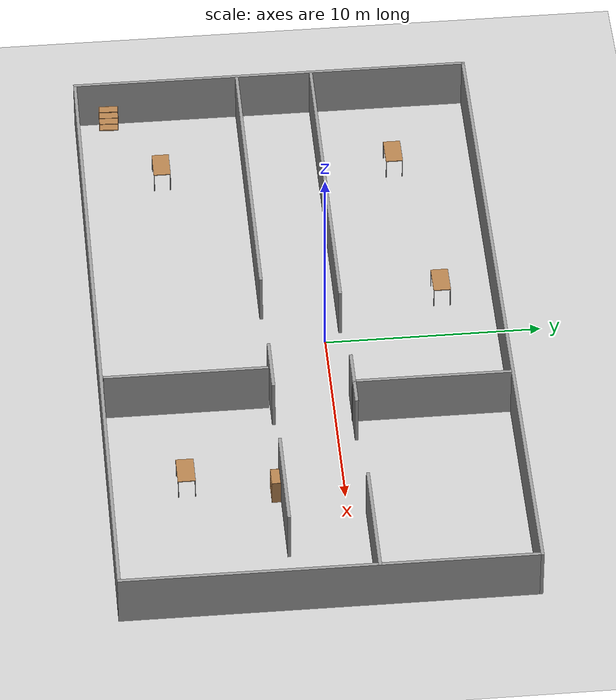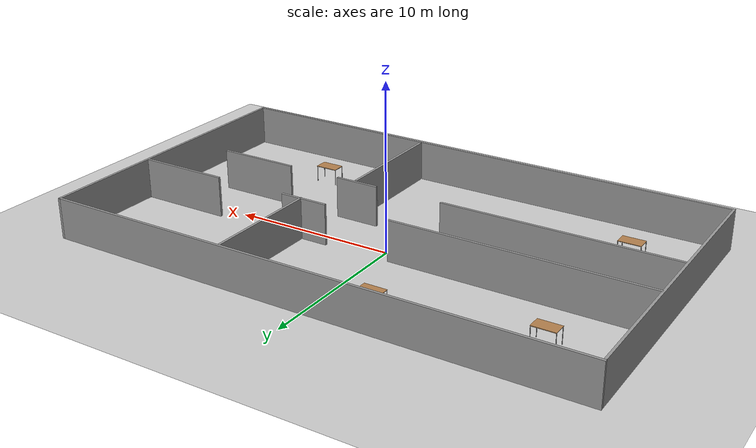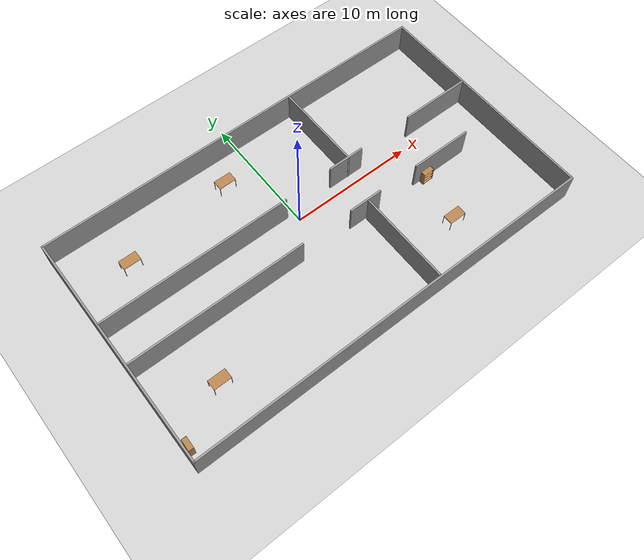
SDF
<sdf version="1.6">
 <world name="default">
  <model name="ground_plane">
   <static>1</static>
   <link name="link">
    <collision name="collision">
     <geometry><plane><normal>0 0 1</normal><size>100 100</size></plane></geometry>
     <surface><friction><ode><mu>100</mu><mu2>50</mu2></ode></friction></surface>
    </collision>
    <visual name="visual">
     <cast_shadows>0</cast_shadows>
     <geometry><plane><normal>0 0 1</normal><size>100 100</size></plane></geometry>
     <material>
      <script><uri>file://media/materials/scripts/gazebo.material</uri><name>Gazebo/Grey</name></script>
     </material>
    </visual>
   </link>
  </model>
  <model name="lima-mars">
   <pose>0.317672 -1.23134 0 0 0 -0.002471</pose>
   <link name="Wall_10">
    <collision name="Wall_10_Collision">
     <geometry><box><size>14.25 0.15 2.5</size></box></geometry>
     <pose>0 0 1.25 0 -0 0</pose>
    </collision>
    <visual name="Wall_10_Visual">
     <pose>0 0 1.25 0 -0 0</pose>
     <geometry><box><size>14.25 0.15 2.5</size></box></geometry>
     <material>
      <script><uri>file://media/materials/scripts/gazebo.material</uri><name>Gazebo/Grey</name></script>
      <ambient>1 1 1 1</ambient>
     </material>
    </visual>
    <pose>-9.26946 -1.57024 0 0 -0 0</pose>
   </link>
   <link name="Wall_12">
    <collision name="Wall_12_Collision">
     <geometry><box><size>2.75 0.15 2.5</size></box></geometry>
     <pose>0 0 1.25 0 -0 0</pose>
    </collision>
    <visual name="Wall_12_Visual">
     <pose>0 0 1.25 0 -0 0</pose>
     <geometry><box><size>2.75 0.15 2.5</size></box></geometry>
     <material>
      <script><uri>file://media/materials/scripts/gazebo.material</uri><name>Gazebo/Grey</name></script>
      <ambient>1 1 1 1</ambient>
     </material>
    </visual>
    <pose>3.48457 -1.57024 0 0 -0 0</pose>
   </link>
   <link name="Wall_14">
    <collision name="Wall_14_Collision">
     <geometry><box><size>7.5 0.15 2.5</size></box></geometry>
     <pose>0 0 1.25 0 -0 0</pose>
    </collision>
    <visual name="Wall_14_Visual">
     <pose>0 0 1.25 0 -0 0</pose>
     <geometry><box><size>7.5 0.15 2.5</size></box></geometry>
     <material>
      <script><uri>file://media/materials/scripts/gazebo.material</uri><name>Gazebo/Grey</name></script>
      <ambient>1 1 1 1</ambient>
     </material>
    </visual>
    <pose>3.65729 -5.43811 0 0 0 -1.5708</pose>
   </link>
   <link name="Wall_16">
    <collision name="Wall_16_Collision">
     <geometry><box><size>15.5 0.15 2.5</size></box></geometry>
     <pose>0 0 1.25 0 -0 0</pose>
    </collision>
    <visual name="Wall_16_Visual">
     <pose>0 0 1.25 0 -0 0</pose>
     <geometry><box><size>15.5 0.15 2.5</size></box></geometry>
     <material>
      <script><uri>file://media/materials/scripts/gazebo.material</uri><name>Gazebo/Grey</name></script>
      <ambient>1 1 1 1</ambient>
     </material>
    </visual>
    <pose>-8.64446 1.98282 0 0 -0 0</pose>
   </link>
   <link name="Wall_18">
    <collision name="Wall_18_Collision">
     <geometry><box><size>3 0.15 2.5</size></box></geometry>
     <pose>0 0 1.25 0 -0 0</pose>
    </collision>
    <visual name="Wall_18_Visual">
     <pose>0 0 1.25 0 -0 0</pose>
     <geometry><box><size>3 0.15 2.5</size></box></geometry>
     <material>
      <script><uri>file://media/materials/scripts/gazebo.material</uri><name>Gazebo/Grey</name></script>
      <ambient>1 1 1 1</ambient>
     </material>
    </visual>
    <pose>4.66493 2.08835 0 0 -0 0</pose>
   </link>
   <link name="Wall_21">
    <collision name="Wall_21_Collision">
     <geometry><box><size>7.25 0.15 2.5</size></box></geometry>
     <pose>0 0 1.25 0 -0 0</pose>
    </collision>
    <visual name="Wall_21_Visual">
     <pose>0 0 1.25 0 -0 0</pose>
     <geometry><box><size>7.25 0.15 2.5</size></box></geometry>
     <material>
      <script><uri>file://media/materials/scripts/gazebo.material</uri><name>Gazebo/Grey</name></script>
      <ambient>1 1 1 1</ambient>
     </material>
    </visual>
    <pose>4.8779 5.61925 0 0 -0 1.5708</pose>
   </link>
   <link name="Wall_23">
    <collision name="Wall_23_Collision">
     <geometry><box><size>5 0.15 2.5</size></box></geometry>
     <pose>0 0 1.25 0 -0 0</pose>
    </collision>
    <visual name="Wall_23_Visual">
     <pose>0 0 1.25 0 -0 0</pose>
     <geometry><box><size>5 0.15 2.5</size></box></geometry>
     <material>
      <script><uri>file://media/materials/scripts/gazebo.material</uri><name>Gazebo/Grey</name></script>
      <ambient>1 1 1 1</ambient>
     </material>
    </visual>
    <pose>10.7416 -1.57175 0 0 -0 0</pose>
   </link>
   <link name="Wall_25">
    <collision name="Wall_25_Collision">
     <geometry><box><size>5.75 0.15 2.5</size></box></geometry>
     <pose>0 0 1.25 0 -0 0</pose>
    </collision>
    <visual name="Wall_25_Visual">
     <pose>0 0 1.25 0 -0 0</pose>
     <geometry><box><size>5.75 0.15 2.5</size></box></geometry>
     <material>
      <script><uri>file://media/materials/scripts/gazebo.material</uri><name>Gazebo/Grey</name></script>
      <ambient>1 1 1 1</ambient>
     </material>
    </visual>
    <pose>13.6249 2.15016 0 0 -0 0</pose>
   </link>
   <link name="Wall_5">
    <collision name="Wall_5_Collision">
     <geometry><box><size>18.75 0.15 2.5</size></box></geometry>
     <pose>0 0 1.25 0 -0 0</pose>
    </collision>
    <visual name="Wall_5_Visual">
     <pose>0 0 1.25 0 -0 0</pose>
     <geometry><box><size>18.75 0.15 2.5</size></box></geometry>
     <material>
      <script><uri>file://media/materials/scripts/gazebo.material</uri><name>Gazebo/Grey</name></script>
      <ambient>1 1 1 1</ambient>
     </material>
    </visual>
    <pose>-16.425 0 0 0 0 -1.5708</pose>
   </link>
   <link name="Wall_6">
    <collision name="Wall_6_Collision">
     <geometry><box><size>33 0.15 2.5</size></box></geometry>
     <pose>0 0 1.25 0 -0 0</pose>
    </collision>
    <visual name="Wall_6_Visual">
     <pose>0 0 1.25 0 -0 0</pose>
     <geometry><box><size>33 0.15 2.5</size></box></geometry>
     <material>
      <script><uri>file://media/materials/scripts/gazebo.material</uri><name>Gazebo/Grey</name></script>
      <ambient>1 1 1 1</ambient>
     </material>
    </visual>
    <pose>0 -9.3 0 0 -0 0</pose>
   </link>
   <link name="Wall_7">
    <collision name="Wall_7_Collision">
     <geometry><box><size>18.75 0.15 2.5</size></box></geometry>
     <pose>0 0 1.25 0 -0 0</pose>
    </collision>
    <visual name="Wall_7_Visual">
     <pose>0 0 1.25 0 -0 0</pose>
     <geometry><box><size>18.75 0.15 2.5</size></box></geometry>
     <material>
      <script><uri>file://media/materials/scripts/gazebo.material</uri><name>Gazebo/Grey</name></script>
      <ambient>1 1 1 1</ambient>
     </material>
    </visual>
    <pose>16.425 0 0 0 -0 1.5708</pose>
   </link>
   <link name="Wall_8">
    <collision name="Wall_8_Collision">
     <geometry><box><size>33 0.15 2.5</size></box></geometry>
     <pose>0 0 1.25 0 -0 0</pose>
    </collision>
    <visual name="Wall_8_Visual">
     <pose>0 0 1.25 0 -0 0</pose>
     <geometry><box><size>33 0.15 2.5</size></box></geometry>
     <material>
      <script><uri>file://media/materials/scripts/gazebo.material</uri><name>Gazebo/Grey</name></script>
      <ambient>1 1 1 1</ambient>
     </material>
    </visual>
    <pose>0 9.3 0 0 -0 3.14159</pose>
   </link>
   <static>1</static>
  </model>
  <model name="table">
   <static>0</static>
   <link name="link">
    <collision name="surface">
     <pose>0 0 1 0 -0 0</pose>
     <geometry><box><size>1.5 0.8 0.03</size></box></geometry>
     <surface><friction><ode><mu>0.6</mu><mu2>0.6</mu2></ode></friction></surface>
    </collision>
    <visual name="visual1">
     <pose>0 0 1 0 -0 0</pose>
     <geometry><box><size>1.4 0.8 0.04</size></box></geometry>
     <material>
      <script><uri>file://media/materials/scripts/gazebo.material</uri><name>Gazebo/Wood</name></script>
     </material>
    </visual>
    <collision name="front_left_leg">
     <pose>0.68 0.38 0.5 0 -0 0</pose>
     <geometry><cylinder><radius>0.02</radius><length>1</length></cylinder></geometry>
    </collision>
    <visual name="front_left_leg">
     <pose>0.68 0.38 0.5 0 -0 0</pose>
     <geometry><cylinder><radius>0.02</radius><length>1</length></cylinder></geometry>
     <material>
      <script><uri>file://media/materials/scripts/gazebo.material</uri><name>Gazebo/Grey</name></script>
     </material>
    </visual>
    <collision name="front_right_leg">
     <pose>0.68 -0.38 0.5 0 -0 0</pose>
     <geometry><cylinder><radius>0.02</radius><length>1</length></cylinder></geometry>
    </collision>
    <visual name="front_right_leg">
     <pose>0.68 -0.38 0.5 0 -0 0</pose>
     <geometry><cylinder><radius>0.02</radius><length>1</length></cylinder></geometry>
     <material>
      <script><uri>file://media/materials/scripts/gazebo.material</uri><name>Gazebo/Grey</name></script>
     </material>
    </visual>
    <collision name="back_right_leg">
     <pose>-0.68 -0.38 0.5 0 -0 0</pose>
     <geometry><cylinder><radius>0.02</radius><length>1</length></cylinder></geometry>
    </collision>
    <visual name="back_right_leg">
     <pose>-0.68 -0.38 0.5 0 -0 0</pose>
     <geometry><cylinder><radius>0.02</radius><length>1</length></cylinder></geometry>
     <material>
      <script><uri>file://media/materials/scripts/gazebo.material</uri><name>Gazebo/Grey</name></script>
     </material>
    </visual>
    <collision name="back_left_leg">
     <pose>-0.68 0.38 0.5 0 -0 0</pose>
     <geometry><cylinder><radius>0.02</radius><length>1</length></cylinder></geometry>
    </collision>
    <visual name="back_left_leg">
     <pose>-0.68 0.38 0.5 0 -0 0</pose>
     <geometry><cylinder><radius>0.02</radius><length>1</length></cylinder></geometry>
     <material>
      <script><uri>file://media/materials/scripts/gazebo.material</uri><name>Gazebo/Grey</name></script>
     </material>
    </visual>
    <inertial>
     <inertia><ixx>1</ixx><ixy>0</ixy><ixz>0</ixz><iyy>1</iyy><iyz>0</iyz><izz>1</izz></inertia>
     <mass>1</mass>
    </inertial>
   </link>
   <pose>-11.7728 -6.70873 -1e-06 1e-06 -0 0</pose>
  </model>
  <model name="table_0">
   <static>0</static>
   <link name="link">
    <collision name="surface">
     <pose>0 0 1 0 -0 0</pose>
     <geometry><box><size>1.5 0.8 0.03</size></box></geometry>
     <surface><friction><ode><mu>0.6</mu><mu2>0.6</mu2></ode></friction></surface>
    </collision>
    <visual name="visual1">
     <pose>0 0 1 0 -0 0</pose>
     <geometry><box><size>1.4 0.8 0.04</size></box></geometry>
     <material>
      <script><uri>file://media/materials/scripts/gazebo.material</uri><name>Gazebo/Wood</name></script>
     </material>
    </visual>
    <collision name="front_left_leg">
     <pose>0.68 0.38 0.5 0 -0 0</pose>
     <geometry><cylinder><radius>0.02</radius><length>1</length></cylinder></geometry>
    </collision>
    <visual name="front_left_leg">
     <pose>0.68 0.38 0.5 0 -0 0</pose>
     <geometry><cylinder><radius>0.02</radius><length>1</length></cylinder></geometry>
     <material>
      <script><uri>file://media/materials/scripts/gazebo.material</uri><name>Gazebo/Grey</name></script>
     </material>
    </visual>
    <collision name="front_right_leg">
     <pose>0.68 -0.38 0.5 0 -0 0</pose>
     <geometry><cylinder><radius>0.02</radius><length>1</length></cylinder></geometry>
    </collision>
    <visual name="front_right_leg">
     <pose>0.68 -0.38 0.5 0 -0 0</pose>
     <geometry><cylinder><radius>0.02</radius><length>1</length></cylinder></geometry>
     <material>
      <script><uri>file://media/materials/scripts/gazebo.material</uri><name>Gazebo/Grey</name></script>
     </material>
    </visual>
    <collision name="back_right_leg">
     <pose>-0.68 -0.38 0.5 0 -0 0</pose>
     <geometry><cylinder><radius>0.02</radius><length>1</length></cylinder></geometry>
    </collision>
    <visual name="back_right_leg">
     <pose>-0.68 -0.38 0.5 0 -0 0</pose>
     <geometry><cylinder><radius>0.02</radius><length>1</length></cylinder></geometry>
     <material>
      <script><uri>file://media/materials/scripts/gazebo.material</uri><name>Gazebo/Grey</name></script>
     </material>
    </visual>
    <collision name="back_left_leg">
     <pose>-0.68 0.38 0.5 0 -0 0</pose>
     <geometry><cylinder><radius>0.02</radius><length>1</length></cylinder></geometry>
    </collision>
    <visual name="back_left_leg">
     <pose>-0.68 0.38 0.5 0 -0 0</pose>
     <geometry><cylinder><radius>0.02</radius><length>1</length></cylinder></geometry>
     <material>
      <script><uri>file://media/materials/scripts/gazebo.material</uri><name>Gazebo/Grey</name></script>
     </material>
    </visual>
    <inertial>
     <inertia><ixx>1</ixx><ixy>0</ixy><ixz>0</ixz><iyy>1</iyy><iyz>0</iyz><izz>1</izz></inertia>
     <mass>1</mass>
    </inertial>
   </link>
   <pose>8.72016 -7.08087 -1e-06 0 1e-06 0</pose>
  </model>
  <model name="table_1">
   <static>0</static>
   <link name="link">
    <collision name="surface">
     <pose>0 0 1 0 -0 0</pose>
     <geometry><box><size>1.5 0.8 0.03</size></box></geometry>
     <surface><friction><ode><mu>0.6</mu><mu2>0.6</mu2></ode></friction></surface>
    </collision>
    <visual name="visual1">
     <pose>0 0 1 0 -0 0</pose>
     <geometry><box><size>1.4 0.8 0.04</size></box></geometry>
     <material>
      <script><uri>file://media/materials/scripts/gazebo.material</uri><name>Gazebo/Wood</name></script>
     </material>
    </visual>
    <collision name="front_left_leg">
     <pose>0.68 0.38 0.5 0 -0 0</pose>
     <geometry><cylinder><radius>0.02</radius><length>1</length></cylinder></geometry>
    </collision>
    <visual name="front_left_leg">
     <pose>0.68 0.38 0.5 0 -0 0</pose>
     <geometry><cylinder><radius>0.02</radius><length>1</length></cylinder></geometry>
     <material>
      <script><uri>file://media/materials/scripts/gazebo.material</uri><name>Gazebo/Grey</name></script>
     </material>
    </visual>
    <collision name="front_right_leg">
     <pose>0.68 -0.38 0.5 0 -0 0</pose>
     <geometry><cylinder><radius>0.02</radius><length>1</length></cylinder></geometry>
    </collision>
    <visual name="front_right_leg">
     <pose>0.68 -0.38 0.5 0 -0 0</pose>
     <geometry><cylinder><radius>0.02</radius><length>1</length></cylinder></geometry>
     <material>
      <script><uri>file://media/materials/scripts/gazebo.material</uri><name>Gazebo/Grey</name></script>
     </material>
    </visual>
    <collision name="back_right_leg">
     <pose>-0.68 -0.38 0.5 0 -0 0</pose>
     <geometry><cylinder><radius>0.02</radius><length>1</length></cylinder></geometry>
    </collision>
    <visual name="back_right_leg">
     <pose>-0.68 -0.38 0.5 0 -0 0</pose>
     <geometry><cylinder><radius>0.02</radius><length>1</length></cylinder></geometry>
     <material>
      <script><uri>file://media/materials/scripts/gazebo.material</uri><name>Gazebo/Grey</name></script>
     </material>
    </visual>
    <collision name="back_left_leg">
     <pose>-0.68 0.38 0.5 0 -0 0</pose>
     <geometry><cylinder><radius>0.02</radius><length>1</length></cylinder></geometry>
    </collision>
    <visual name="back_left_leg">
     <pose>-0.68 0.38 0.5 0 -0 0</pose>
     <geometry><cylinder><radius>0.02</radius><length>1</length></cylinder></geometry>
     <material>
      <script><uri>file://media/materials/scripts/gazebo.material</uri><name>Gazebo/Grey</name></script>
     </material>
    </visual>
    <inertial>
     <inertia><ixx>1</ixx><ixy>0</ixy><ixz>0</ixz><iyy>1</iyy><iyz>0</iyz><izz>1</izz></inertia>
     <mass>1</mass>
    </inertial>
   </link>
   <pose>-11.7324 4.32229 -2e-06 0 2e-06 0</pose>
  </model>
  <model name="table_2">
   <static>0</static>
   <link name="link">
    <collision name="surface">
     <pose>0 0 1 0 -0 0</pose>
     <geometry><box><size>1.5 0.8 0.03</size></box></geometry>
     <surface><friction><ode><mu>0.6</mu><mu2>0.6</mu2></ode></friction></surface>
    </collision>
    <visual name="visual1">
     <pose>0 0 1 0 -0 0</pose>
     <geometry><box><size>1.4 0.8 0.04</size></box></geometry>
     <material>
      <script><uri>file://media/materials/scripts/gazebo.material</uri><name>Gazebo/Wood</name></script>
     </material>
    </visual>
    <collision name="front_left_leg">
     <pose>0.68 0.38 0.5 0 -0 0</pose>
     <geometry><cylinder><radius>0.02</radius><length>1</length></cylinder></geometry>
    </collision>
    <visual name="front_left_leg">
     <pose>0.68 0.38 0.5 0 -0 0</pose>
     <geometry><cylinder><radius>0.02</radius><length>1</length></cylinder></geometry>
     <material>
      <script><uri>file://media/materials/scripts/gazebo.material</uri><name>Gazebo/Grey</name></script>
     </material>
    </visual>
    <collision name="front_right_leg">
     <pose>0.68 -0.38 0.5 0 -0 0</pose>
     <geometry><cylinder><radius>0.02</radius><length>1</length></cylinder></geometry>
    </collision>
    <visual name="front_right_leg">
     <pose>0.68 -0.38 0.5 0 -0 0</pose>
     <geometry><cylinder><radius>0.02</radius><length>1</length></cylinder></geometry>
     <material>
      <script><uri>file://media/materials/scripts/gazebo.material</uri><name>Gazebo/Grey</name></script>
     </material>
    </visual>
    <collision name="back_right_leg">
     <pose>-0.68 -0.38 0.5 0 -0 0</pose>
     <geometry><cylinder><radius>0.02</radius><length>1</length></cylinder></geometry>
    </collision>
    <visual name="back_right_leg">
     <pose>-0.68 -0.38 0.5 0 -0 0</pose>
     <geometry><cylinder><radius>0.02</radius><length>1</length></cylinder></geometry>
     <material>
      <script><uri>file://media/materials/scripts/gazebo.material</uri><name>Gazebo/Grey</name></script>
     </material>
    </visual>
    <collision name="back_left_leg">
     <pose>-0.68 0.38 0.5 0 -0 0</pose>
     <geometry><cylinder><radius>0.02</radius><length>1</length></cylinder></geometry>
    </collision>
    <visual name="back_left_leg">
     <pose>-0.68 0.38 0.5 0 -0 0</pose>
     <geometry><cylinder><radius>0.02</radius><length>1</length></cylinder></geometry>
     <material>
      <script><uri>file://media/materials/scripts/gazebo.material</uri><name>Gazebo/Grey</name></script>
     </material>
    </visual>
    <inertial>
     <inertia><ixx>1</ixx><ixy>0</ixy><ixz>0</ixz><iyy>1</iyy><iyz>0</iyz><izz>1</izz></inertia>
     <mass>1</mass>
    </inertial>
   </link>
   <pose>-2.65531 5.63417 -1e-06 0 1e-06 0</pose>
  </model>
  <model name="bookshelf">
   <static>1</static>
   <link name="link">
    <inertial><mass>1</mass></inertial>
    <collision name="back">
     <pose>0 0.005 0.6 0 -0 0</pose>
     <geometry><box><size>0.9 0.01 1.2</size></box></geometry>
    </collision>
    <visual name="visual1">
     <pose>0 0.005 0.6 0 -0 0</pose>
     <geometry><box><size>0.9 0.01 1.2</size></box></geometry>
     <material>
      <script><uri>file://media/materials/scripts/gazebo.material</uri><name>Gazebo/Wood</name></script>
     </material>
    </visual>
    <collision name="left_side">
     <pose>0.45 -0.195 0.6 0 -0 0</pose>
     <geometry><box><size>0.02 0.4 1.2</size></box></geometry>
    </collision>
    <visual name="visual2">
     <pose>0.45 -0.195 0.6 0 -0 0</pose>
     <geometry><box><size>0.02 0.4 1.2</size></box></geometry>
     <material>
      <script><uri>file://media/materials/scripts/gazebo.material</uri><name>Gazebo/Wood</name></script>
     </material>
    </visual>
    <collision name="right_side">
     <pose>-0.45 -0.195 0.6 0 -0 0</pose>
     <geometry><box><size>0.02 0.4 1.2</size></box></geometry>
    </collision>
    <visual name="visual3">
     <pose>-0.45 -0.195 0.6 0 -0 0</pose>
     <geometry><box><size>0.02 0.4 1.2</size></box></geometry>
     <material>
      <script><uri>file://media/materials/scripts/gazebo.material</uri><name>Gazebo/Wood</name></script>
     </material>
    </visual>
    <collision name="bottom">
     <pose>0 -0.195 0.03 0 -0 0</pose>
     <geometry><box><size>0.88 0.4 0.06</size></box></geometry>
    </collision>
    <visual name="visual4">
     <pose>0 -0.195 0.03 0 -0 0</pose>
     <geometry><box><size>0.88 0.4 0.06</size></box></geometry>
     <material>
      <script><uri>file://media/materials/scripts/gazebo.material</uri><name>Gazebo/Wood</name></script>
     </material>
    </visual>
    <collision name="top">
     <pose>0 -0.195 1.19 0 -0 0</pose>
     <geometry><box><size>0.88 0.4 0.02</size></box></geometry>
    </collision>
    <visual name="visual5">
     <pose>0 -0.195 1.19 0 -0 0</pose>
     <geometry><box><size>0.88 0.4 0.02</size></box></geometry>
     <material>
      <script><uri>file://media/materials/scripts/gazebo.material</uri><name>Gazebo/Wood</name></script>
     </material>
    </visual>
    <collision name="low_shelf">
     <pose>0 -0.195 0.43 0 -0 0</pose>
     <geometry><box><size>0.88 0.4 0.02</size></box></geometry>
    </collision>
    <visual name="visual6">
     <pose>0 -0.195 0.43 0 -0 0</pose>
     <geometry><box><size>0.88 0.4 0.02</size></box></geometry>
     <material>
      <script><uri>file://media/materials/scripts/gazebo.material</uri><name>Gazebo/Wood</name></script>
     </material>
    </visual>
    <collision name="high_shelf">
     <pose>0 -0.195 0.8 0 -0 0</pose>
     <geometry><box><size>0.88 0.4 0.02</size></box></geometry>
    </collision>
    <visual name="visual7">
     <pose>0 -0.195 0.8 0 -0 0</pose>
     <geometry><box><size>0.88 0.4 0.02</size></box></geometry>
     <material>
      <script><uri>file://media/materials/scripts/gazebo.material</uri><name>Gazebo/Wood</name></script>
     </material>
    </visual>
   </link>
   <pose>9.65233 -2.92199 0 0 -0 0</pose>
  </model>
  <model name="bookshelf_0">
   <static>1</static>
   <link name="link">
    <inertial><mass>1</mass></inertial>
    <collision name="back">
     <pose>0 0.005 0.6 0 -0 0</pose>
     <geometry><box><size>0.9 0.01 1.2</size></box></geometry>
    </collision>
    <visual name="visual1">
     <pose>0 0.005 0.6 0 -0 0</pose>
     <geometry><box><size>0.9 0.01 1.2</size></box></geometry>
     <material>
      <script><uri>file://media/materials/scripts/gazebo.material</uri><name>Gazebo/Wood</name></script>
     </material>
    </visual>
    <collision name="left_side">
     <pose>0.45 -0.195 0.6 0 -0 0</pose>
     <geometry><box><size>0.02 0.4 1.2</size></box></geometry>
    </collision>
    <visual name="visual2">
     <pose>0.45 -0.195 0.6 0 -0 0</pose>
     <geometry><box><size>0.02 0.4 1.2</size></box></geometry>
     <material>
      <script><uri>file://media/materials/scripts/gazebo.material</uri><name>Gazebo/Wood</name></script>
     </material>
    </visual>
    <collision name="right_side">
     <pose>-0.45 -0.195 0.6 0 -0 0</pose>
     <geometry><box><size>0.02 0.4 1.2</size></box></geometry>
    </collision>
    <visual name="visual3">
     <pose>-0.45 -0.195 0.6 0 -0 0</pose>
     <geometry><box><size>0.02 0.4 1.2</size></box></geometry>
     <material>
      <script><uri>file://media/materials/scripts/gazebo.material</uri><name>Gazebo/Wood</name></script>
     </material>
    </visual>
    <collision name="bottom">
     <pose>0 -0.195 0.03 0 -0 0</pose>
     <geometry><box><size>0.88 0.4 0.06</size></box></geometry>
    </collision>
    <visual name="visual4">
     <pose>0 -0.195 0.03 0 -0 0</pose>
     <geometry><box><size>0.88 0.4 0.06</size></box></geometry>
     <material>
      <script><uri>file://media/materials/scripts/gazebo.material</uri><name>Gazebo/Wood</name></script>
     </material>
    </visual>
    <collision name="top">
     <pose>0 -0.195 1.19 0 -0 0</pose>
     <geometry><box><size>0.88 0.4 0.02</size></box></geometry>
    </collision>
    <visual name="visual5">
     <pose>0 -0.195 1.19 0 -0 0</pose>
     <geometry><box><size>0.88 0.4 0.02</size></box></geometry>
     <material>
      <script><uri>file://media/materials/scripts/gazebo.material</uri><name>Gazebo/Wood</name></script>
     </material>
    </visual>
    <collision name="low_shelf">
     <pose>0 -0.195 0.43 0 -0 0</pose>
     <geometry><box><size>0.88 0.4 0.02</size></box></geometry>
    </collision>
    <visual name="visual6">
     <pose>0 -0.195 0.43 0 -0 0</pose>
     <geometry><box><size>0.88 0.4 0.02</size></box></geometry>
     <material>
      <script><uri>file://media/materials/scripts/gazebo.material</uri><name>Gazebo/Wood</name></script>
     </material>
    </visual>
    <collision name="high_shelf">
     <pose>0 -0.195 0.8 0 -0 0</pose>
     <geometry><box><size>0.88 0.4 0.02</size></box></geometry>
    </collision>
    <visual name="visual7">
     <pose>0 -0.195 0.8 0 -0 0</pose>
     <geometry><box><size>0.88 0.4 0.02</size></box></geometry>
     <material>
      <script><uri>file://media/materials/scripts/gazebo.material</uri><name>Gazebo/Wood</name></script>
     </material>
    </visual>
   </link>
   <pose>-15.9508 -8.94601 0 0 -0 1.53206</pose>
  </model>
 </world>
</sdf>
